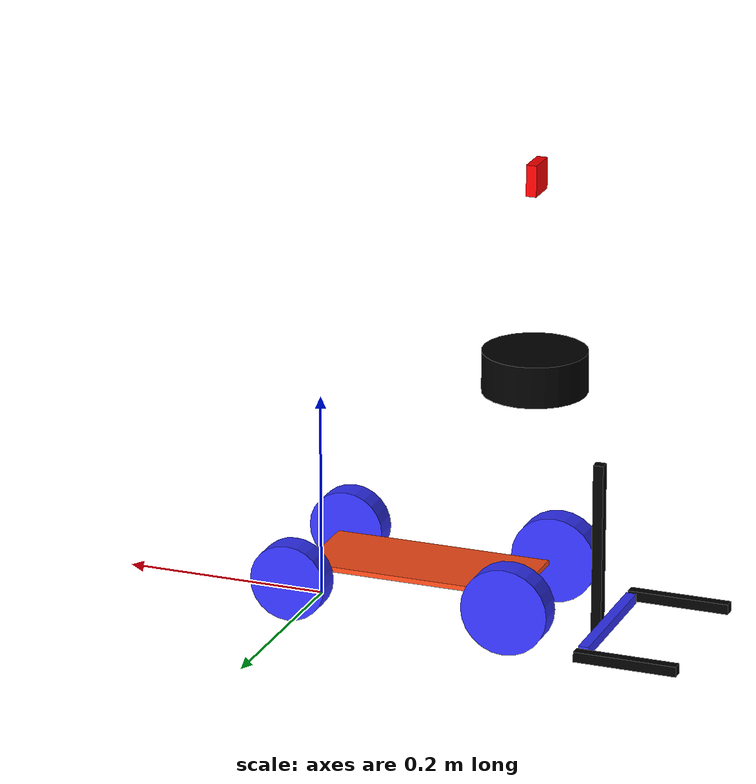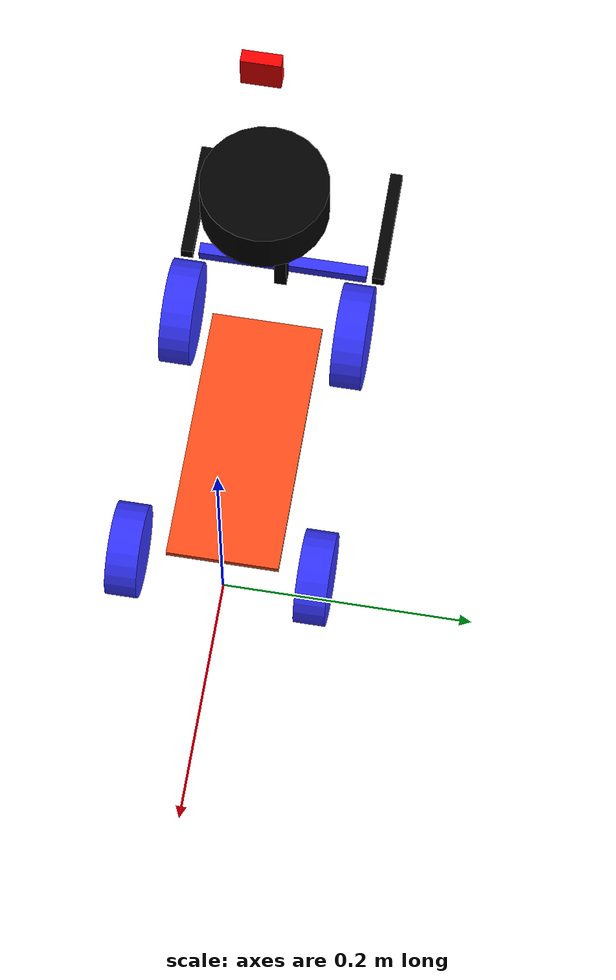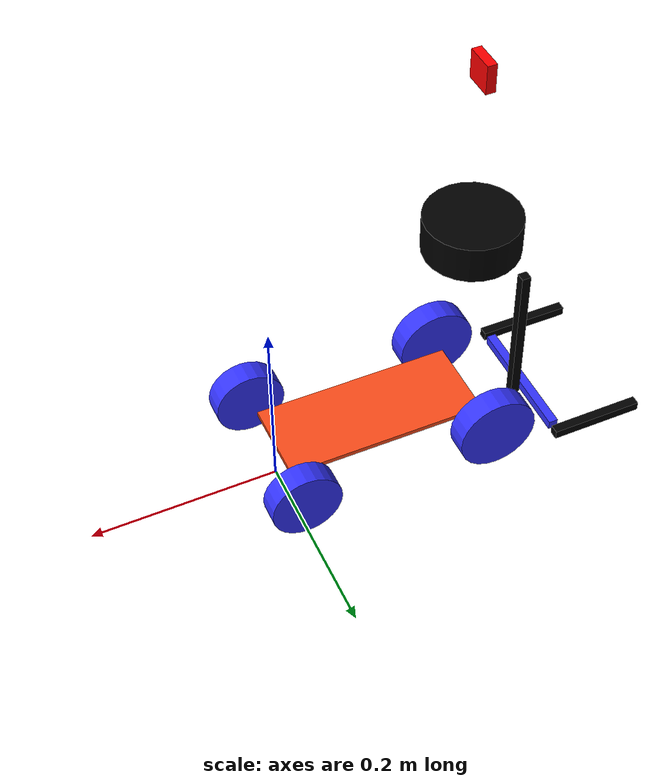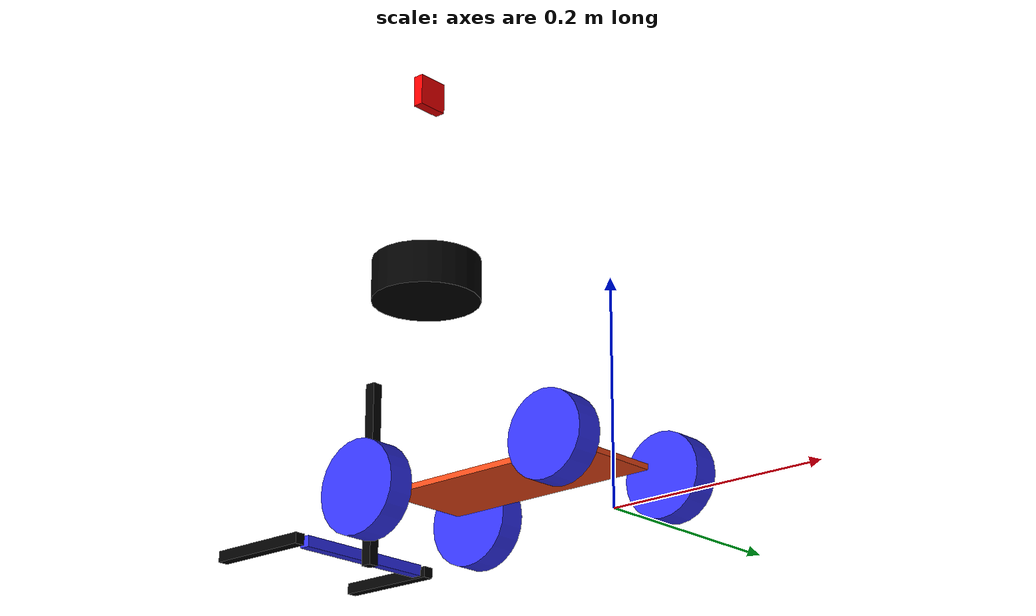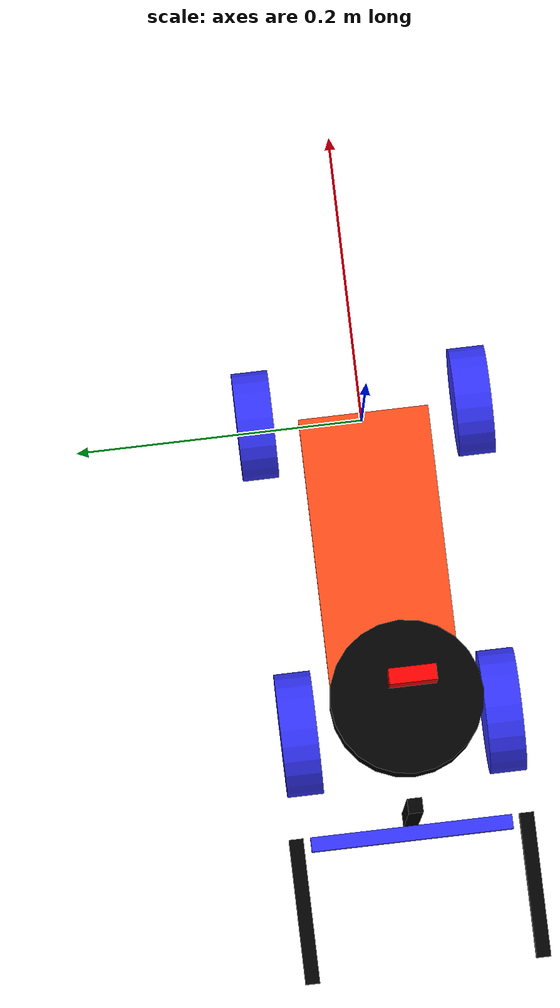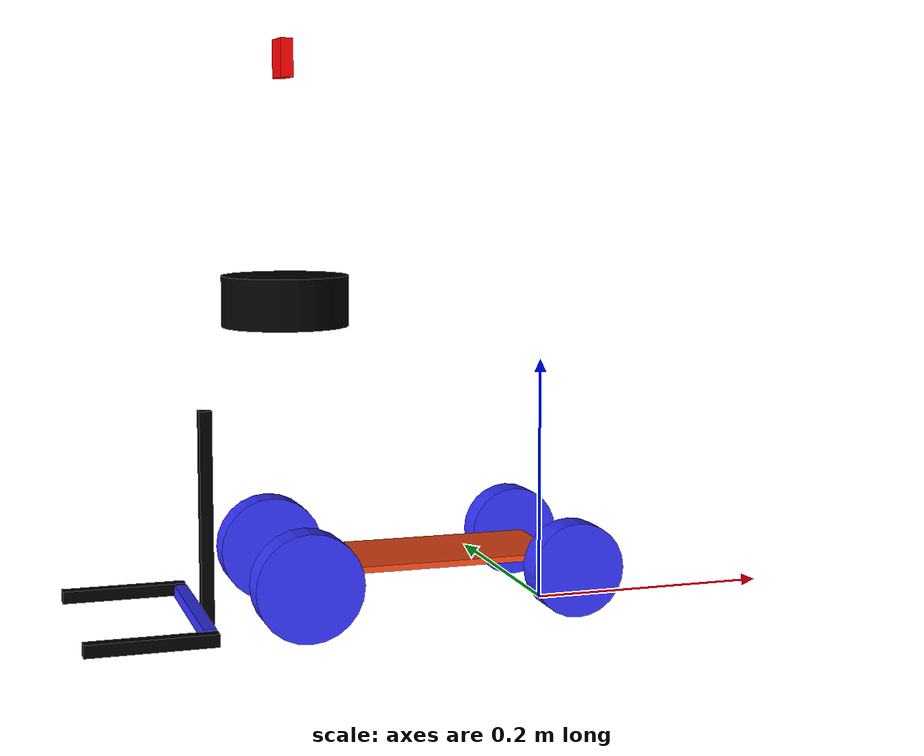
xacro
<?xml version="1.0"?>
<robot xmlns:xacro="http://www.ros.org/wiki/xacro"  name="robot">

    <xacro:arg name="use_ros2_control" default="true"/>
    <xacro:arg name="sim_mode" default="true"/>

    <xacro:include filename="robot_core.xacro" />
    <xacro:include filename="ros2_control.xacro" />
    <xacro:include filename="lidar_mid360.xacro" />
    <xacro:include filename="depth_camera.xacro" />

</robot>

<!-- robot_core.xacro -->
<robot xmlns:xacro="http://www.ros.org/wiki/xacro" >

    <xacro:include filename="inertial_macros.xacro"/>

    <xacro:property name="chassis_length" value="0.215"/>
    <xacro:property name="chassis_width" value="0.09"/>
    <xacro:property name="chassis_height" value="0.005"/>
    <xacro:property name="chassis_mass" value="5"/>
    <xacro:property name="front_wheel_radius" value="0.0425"/>
    <xacro:property name="rear_wheel_radius" value="0.0375"/>
    <xacro:property name="wheel_thickness" value="0.025"/>
    <xacro:property name="wheel_mass" value="0.05"/>
    <xacro:property name="rear_wheel_offset_x" value="0.215"/>
    <xacro:property name="rear_wheel_offset_y" value="0.075"/>
    <xacro:property name="front_wheel_offset_x" value="0.0"/>
    <xacro:property name="front_wheel_offset_y" value="0.07"/>
    <xacro:property name="mast_offset_x" value="0.07"/>
    <xacro:property name="mast_height" value="0.170"/>
    <xacro:property name="mast_width" value="0.01"/>
    <xacro:property name="mast_mass" value="0.1"/>
    <xacro:property name="fork_length" value="0.1"/>
    <xacro:property name="fork_width" value="0.01"/>
    <xacro:property name="fork_thickness" value="0.01"/>
    <xacro:property name="fork_mass" value="0.01"/>
    <xacro:property name="carriage_length" value="0.01"/>
    <xacro:property name="carriage_width" value="0.140"/>
    <xacro:property name="carriage_thickness" value="0.01"/>
    <xacro:property name="carriage_mass" value="0.1"/>

    <material name="white">
        <color rgba="1 1 1 1" />
    </material>

    <material name="orange">
        <color rgba="1 0.3 0.1 1"/>
    </material>

    <material name="blue">
        <color rgba="0.2 0.2 1 1"/>
    </material>

    <material name="black">
        <color rgba="0 0 0 1"/>
    </material>

    <material name="red">
        <color rgba="1 0 0 1"/>
    </material>

    <!-- BASE LINK -->

    <link name="base_link">

    </link>

    <!-- BASE_FOOTPRINT LINK -->

    <joint name="base_footprint_joint" type="fixed">
        <parent link="base_link"/>
        <child link="base_footprint"/>
        <origin xyz="0 0 0" rpy="0 0 0"/>
    </joint>

    <link name="base_footprint">
    </link>

    <!-- CHASSIS LINK -->

    <joint name="chassis_joint" type="fixed">
        <parent link="base_link"/>
        <child link="chassis"/>
        <origin xyz="${-rear_wheel_offset_x} 0 ${front_wheel_radius}"/>
    </joint>

    <link name="chassis">
        <visual>
            <origin xyz="${chassis_length/2} 0 ${chassis_height/2}"/>
            <geometry>
                <box size="${chassis_length} ${chassis_width} ${chassis_height}"/>
            </geometry>
            <material name="orange"/>
        </visual>
        <collision>
            <origin xyz="${chassis_length/2} 0 ${chassis_height/2}"/>
            <geometry>
                <box size="${chassis_length} ${chassis_width} ${chassis_height}"/>
            </geometry>
        </collision>
        <xacro:inertial_box mass="0.5" x="${chassis_length}" y="${chassis_width}" z="${chassis_height}">
            <origin xyz="${chassis_length/2} 0 ${chassis_height/2}" rpy="0 0 0"/>
        </xacro:inertial_box>
    </link>

    <gazebo reference="chassis">
        <material>Gazebo/Orange</material>
    </gazebo>

    <!-- RIGHT REAR STEERING JOINT -->

    <joint name="right_rear_steer_joint" type="revolute">
        <parent link="chassis"/>
        <child link="right_rear_wheel_steer"/>
        <origin xyz="${rear_wheel_offset_x} ${rear_wheel_offset_y} 0" rpy="0 0 0"/>
        <axis xyz="0 0 -1"/>
        <limit lower="-0.5" upper="0.5" effort="5.0" velocity="1.0"/>
    </joint>

    <link name="right_rear_wheel_steer">
        <visual>
            <geometry><box size="0.01 0.01 0.01"/></geometry> <!-- dummy link -->
        </visual>
        <collision>
            <geometry><box size="0.01 0.01 0.01"/></geometry>
        </collision>
        <inertial>
            <mass value="0.01"/>
            <origin xyz="0 0 0" rpy="0 0 0"/>
            <inertia ixx="0.0001" ixy="0" ixz="0" iyy="0.0001" iyz="0" izz="0.0001"/>
        </inertial>
    </link>

    <!-- RIGHT REAR WHEEL -->

    <joint name="right_rear_wheel_joint" type="revolute">
        <parent link="right_rear_wheel_steer"/>
        <child link="right_rear_wheel"/>
        <origin xyz="0 0 0" rpy="-${pi/2} 0 0"/>
        <axis xyz="0 0 1"/>
        <limit lower="-1000" upper="1000" effort="0.0" velocity="1000"/> <!-- essentially free rotation -->
        <dynamics damping="0.05" friction="0.0"/> <!-- small damping to stabilize -->
    </joint>

    <link name="right_rear_wheel">
        <visual>
            <geometry>
                <cylinder radius="${rear_wheel_radius}" length="${wheel_thickness}"/>
            </geometry>
            <material name="blue"/>
        </visual>
        <collision>
            <geometry>
                <cylinder radius="${rear_wheel_radius}" length="${wheel_thickness}"/>
            </geometry>
            <surface>
                <friction>
                    <ode>
                        <mu>1.0</mu>       <!-- longitudinal friction -->
                        <mu2>1.0</mu2>     <!-- lateral friction -->
                        <slip1>0.0</slip1>
                        <slip2>0.0</slip2>
                    </ode>
                </friction>
            </surface>
        </collision>
        <xacro:inertial_cylinder mass="${wheel_mass}" length="${wheel_thickness}" radius="${rear_wheel_radius}">
            <origin xyz="0 0 0" rpy="0 0 0"/>
        </xacro:inertial_cylinder>
    </link>

    <!-- LEFT REAR STEERING JOINT -->

    <joint name="left_rear_steer_joint" type="revolute">
        <parent link="chassis"/>
        <child link="left_rear_wheel_steer"/>
        <origin xyz="${rear_wheel_offset_x} ${-rear_wheel_offset_y} 0" rpy="0 0 0"/>
        <axis xyz="0 0 -1"/>
        <limit lower="-0.5" upper="0.5" effort="5.0" velocity="1.0"/>
    </joint>

    <link name="left_rear_wheel_steer">
        <visual>
            <geometry><box size="0.01 0.01 0.01"/></geometry> <!-- dummy link -->
        </visual>
        <collision>
            <geometry><box size="0.01 0.01 0.01"/></geometry>
        </collision>
        <inertial>
            <mass value="0.01"/>
            <origin xyz="0 0 0" rpy="0 0 0"/>
            <inertia ixx="0.0001" ixy="0" ixz="0" iyy="0.0001" iyz="0" izz="0.0001"/>
        </inertial>
    </link>

    <!-- LEFT REAR WHEEL LINK -->

    <joint name="left_rear_wheel_joint" type="revolute">
        <parent link="left_rear_wheel_steer"/>
        <child link="left_rear_wheel"/>
        <origin xyz="0 0 0" rpy="${pi/2} 0 0" />
        <axis xyz="0 0 -1"/>
        <limit lower="-1000" upper="1000" effort="0.0" velocity="1000"/> <!-- essentially free rotation -->
        <dynamics damping="0.05" friction="0.0"/> <!-- small damping to stabilize -->
    </joint>

    <link name="left_rear_wheel">
        <visual>
            <geometry>
                <cylinder radius="${rear_wheel_radius}" length="${wheel_thickness}"/>
            </geometry>
            <material name="blue"/>
        </visual>
        <collision>
            <geometry>
                <cylinder radius="${rear_wheel_radius}" length="${wheel_thickness}"/>
            </geometry>
            <surface>
                <friction>
                    <ode>
                        <mu>1.0</mu>       <!-- longitudinal friction -->
                        <mu2>1.0</mu2>     <!-- lateral friction -->
                        <slip1>0.0</slip1>
                        <slip2>0.0</slip2>
                    </ode>
                </friction>
            </surface>
        </collision>
        <xacro:inertial_cylinder mass="${wheel_mass}" length="${wheel_thickness}" radius="${rear_wheel_radius}">
            <origin xyz="0 0 0" rpy="0 0 0"/>
        </xacro:inertial_cylinder>
    </link>

    <gazebo reference="left_rear_wheel">
        <material>Gazebo/Blue</material>
    </gazebo>

    <!-- right FRONT WHEEL LINK -->

    <joint name="right_front_wheel_joint" type="continuous">
        <parent link="chassis"/>
        <child link="right_front_wheel"/>
        <origin xyz="${front_wheel_offset_x} ${front_wheel_offset_y} 0" rpy="-${pi/2} 0 0" />
        <axis xyz="0 0 -1"/>
    </joint>

    <link name="right_front_wheel">
        <visual>
            <geometry>
                <cylinder radius="${front_wheel_radius}" length="${wheel_thickness}"/>
            </geometry>
            <material name="blue"/>
        </visual>
        <collision>
            <geometry>
                <cylinder radius="${front_wheel_radius}" length="${wheel_thickness}"/>
            </geometry>
        </collision>
        <xacro:inertial_cylinder mass="${wheel_mass}" length="${wheel_thickness}" radius="${front_wheel_radius}">
            <origin xyz="0 0 0" rpy="0 0 0"/>
        </xacro:inertial_cylinder>
    </link>

    <gazebo reference="right_front_wheel">
        <material>Gazebo/Blue</material>
    </gazebo>

    <!-- left FRONT WHEEL LINK -->

    <joint name="left_front_wheel_joint" type="continuous">
        <parent link="chassis"/>
        <child link="left_front_wheel"/>
        <origin xyz="${front_wheel_offset_x} ${-front_wheel_offset_y} 0" rpy="${pi/2} 0 0" />
        <axis xyz="0 0 1"/>
    </joint>

    <link name="left_front_wheel">
        <visual>
            <geometry>
                <cylinder radius="${front_wheel_radius}" length="${wheel_thickness}"/>
            </geometry>
            <material name="blue"/>
        </visual>
        <collision>
            <geometry>
                <cylinder radius="${front_wheel_radius}" length="${wheel_thickness}"/>
            </geometry>
        </collision>
        <xacro:inertial_cylinder mass="${wheel_mass}" length="${wheel_thickness}" radius="${front_wheel_radius}">
            <origin xyz="0 0 0" rpy="0 0 0"/>
        </xacro:inertial_cylinder>
    </link>

    <gazebo reference="left_front_wheel">
        <material>Gazebo/Blue</material>
    </gazebo>

    <!-- MAST LINK -->

    <link name="mast">
        <visual>
            <geometry>
                <box size="${mast_width} ${mast_width} ${mast_height}"/>
            </geometry>
            <material name="black"/>
        </visual>
        <collision>
            <geometry>
                <box size="${mast_width} ${mast_width} ${mast_height}"/>
            </geometry>
        </collision>
        <xacro:inertial_box mass="${mast_mass}" x="${mast_width}" y="${mast_width}" z="${mast_height}">
            <origin xyz="${mast_width/2} 0 ${mast_height/2+0.01}" rpy="0 0 0"/>
        </xacro:inertial_box>
    </link>

    <joint name="mast_joint" type="fixed">
        <parent link="chassis"/>
        <child link="mast"/>
        <origin xyz="${-mast_offset_x+mast_width/2} 0 ${-front_wheel_radius+mast_height/2}" rpy="0 0 0"/>
    </joint>

    <!-- FORK CARRIAGE -->

    <link name="fork_carriage">
        <visual>
            <geometry>
                <box size="${carriage_length} ${carriage_width} ${carriage_thickness}"/>
            </geometry>
            <material name="blue"/>
        </visual>
        <collision>
            <geometry>
                <box size="${carriage_length} ${carriage_width} ${carriage_thickness}"/>
            </geometry>
        </collision>
        <xacro:inertial_box mass="${carriage_mass}" x="${carriage_length}" y="${carriage_width}" z="${carriage_thickness}">
            <origin xyz="${carriage_length/2} 0 ${carriage_thickness/2}" rpy="0 0 0"/>
        </xacro:inertial_box>
    </link>

    <joint name="fork_carriage_joint" type="prismatic">
        <parent link="mast"/>
        <child link="fork_carriage"/>
        <origin xyz="-${mast_width/2 + carriage_length/2} 0 ${-mast_height/2+carriage_thickness}" rpy="0 0 0"/>
        <axis xyz="0 0 1"/>
        <limit lower="0" upper="${mast_height}" effort="10" velocity="0.1"/>
    </joint>

    <!-- right FORK -->

    <link name="fork_right">
        <visual>
            <geometry>
                <box size="${fork_length} ${fork_width} ${fork_thickness}"/>
            </geometry>
            <material name="black"/>
        </visual>
        <collision>
            <geometry>
                <box size="${fork_length} ${fork_width} ${fork_thickness}"/>
            </geometry>
        </collision>
        <xacro:inertial_box mass="${fork_mass}" x="${fork_length}" y="${fork_width}" z="${fork_thickness}">
        <origin xyz="${fork_length/2} 0 0"/>
        </xacro:inertial_box>
    </link>
    <joint name="fork_right_joint" type="fixed">
        <parent link="fork_carriage"/>
        <child link="fork_right"/>
        <origin xyz="${-fork_length/2+carriage_length/2} ${(carriage_width/2+fork_width)} 0" rpy="0 0 ${pi}"/>
    </joint>

    <!-- left FORK -->

    <link name="fork_left">
        <visual>
            <geometry>
                <box size="${fork_length} ${fork_width} ${fork_thickness}"/>
            </geometry>
            <material name="black"/>
        </visual>
        <collision>
            <geometry>
                <box size="${fork_length} ${fork_width} ${fork_thickness}"/>
            </geometry>
        </collision>
        <xacro:inertial_box mass="${fork_mass}" x="${fork_length}" y="${fork_width}" z="${fork_thickness}">
        <origin xyz="${fork_length/2} 0 0"/>
        </xacro:inertial_box>
    </link>
    <joint name="fork_left_joint" type="fixed">
        <parent link="fork_carriage"/>
        <child link="fork_left"/>
        <origin xyz="${-fork_length/2+carriage_length/2} ${-(carriage_width/2+fork_width)} 0" rpy="0 0 ${pi}"/>
    </joint>

</robot>

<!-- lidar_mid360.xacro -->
<robot xmlns:xacro="http://www.ros.org/wiki/xacro" >

    <xacro:property name="M_PI" value="3.1415926"/>
    <xacro:property name="laser_min_range" value="0.1"/>
    <xacro:property name="laser_max_range" value="10.0"/>
    <xacro:property name="samples" value="40000"/>
    <xacro:property name="resolution" value="0.002"/>
    <xacro:property name="noise_mean" value="0.0"/>
    <xacro:property name="noise_stddev" value="0.01"/>

    <link name="lidar_frame">
        <visual>
            <geometry>
                <cylinder radius="0.05" length="0.04"/>
            </geometry>
            <material name="black"/>
        </visual>
    </link>

    <joint name="lidar_joint" type="fixed">
        <parent link="chassis"/>
        <child link="lidar_frame"/>
        <origin xyz="0 0 0.212" rpy="0 0 0"/>
    </joint>

    <gazebo reference="lidar_frame">

        <material>Gazebo/Gray</material>

        <sensor name="lidar" type="gpu_lidar">
          <pose relative_to='lidar_frame'>0 0 0 0 0 0</pose>
          <topic>scan</topic>
          <gz_frame_id>lidar_frame</gz_frame_id>
          <update_rate>10</update_rate>
          <ray>
            <scan>
            <horizontal>
              <samples>100</samples>
              <resolution>1</resolution>
              <min_angle>${0}</min_angle>
              <max_angle>${2*M_PI}</max_angle>
            </horizontal>
            <vertical>
              <samples>360</samples>
              <resolution>1</resolution>
              <min_angle>${-10/180*M_PI}</min_angle>
              <max_angle>${55.22/180*M_PI}</max_angle>
            </vertical>
            </scan>
            <range>
            <min>${laser_min_range}</min>
            <max>${laser_max_range}</max>
            <resolution>${resolution}</resolution>
            </range>
            <noise>
            <type>gaussian</type>
            <mean>${noise_mean}</mean>
            <stddev>${noise_stddev}</stddev>
            </noise>
          </ray>
          <always_on>1</always_on>
          <visualize>true</visualize>
        </sensor>

    </gazebo>

</robot>

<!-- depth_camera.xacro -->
<robot xmlns:xacro="http://www.ros.org/wiki/xacro" >

    <joint name="camera_joint" type="fixed">
        <parent link="chassis"/>
        <child link="camera_link"/>
        <origin xyz="0.0 0 0.4" rpy="0 0 ${pi}"/>
    </joint>

    <link name="camera_link">
        <visual>
            <geometry>
                <box size="0.010 0.03 0.03"/>
            </geometry>
            <material name="red"/>
        </visual>
    </link>

    <joint name="camera_optical_joint" type="fixed">
        <parent link="camera_link"/>
        <child link="camera_link_optical"/>
        <origin xyz="0 0 0" rpy="0 0 0"/>
    </joint>

    <link name="camera_link_optical"></link>

    <gazebo reference="camera_link">
        <material>Gazebo/Red</material>

        <sensor name="camera" type="rgbd_camera"> <pose> 0 0 0 0 0 0 </pose>
            <always_on>1</always_on>
            <update_rate>10</update_rate>
            <visualize>true</visualize>
            <topic>camera</topic>
            <gz_frame_id>camera_link_optical</gz_frame_id>
            <camera>
                <horizontal_fov>1.089</horizontal_fov>
                <image>
                    <format>R8G8B8</format> <width>640</width>
                    <height>480</height>
                </image>
                <clip>
                    <near>0.05</near>
                    <far>8.0</far>
                </clip>
                </camera>
        </sensor>
    </gazebo>

</robot>
